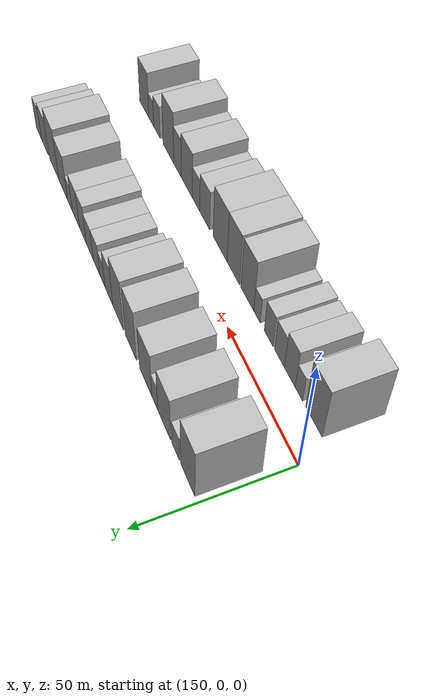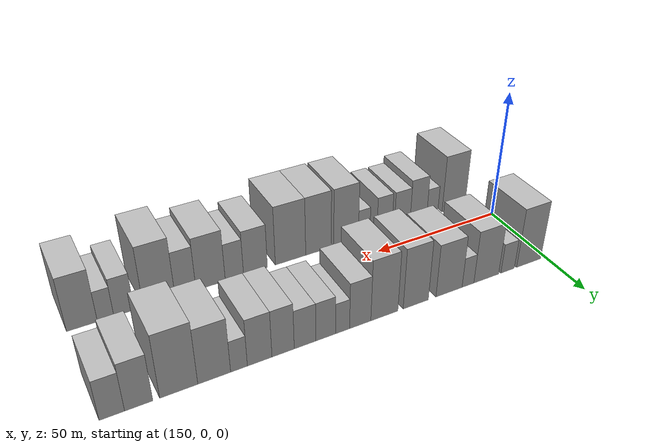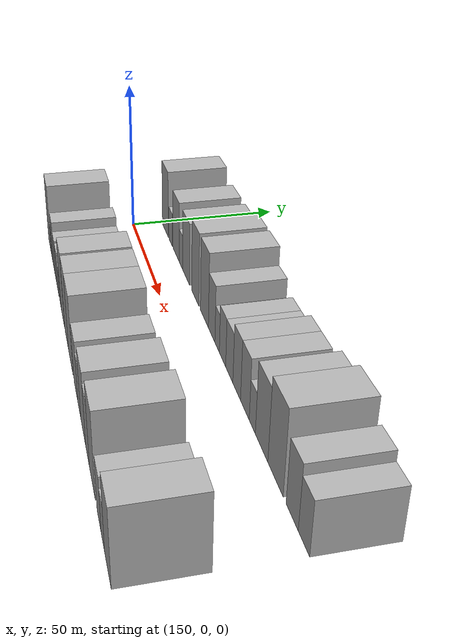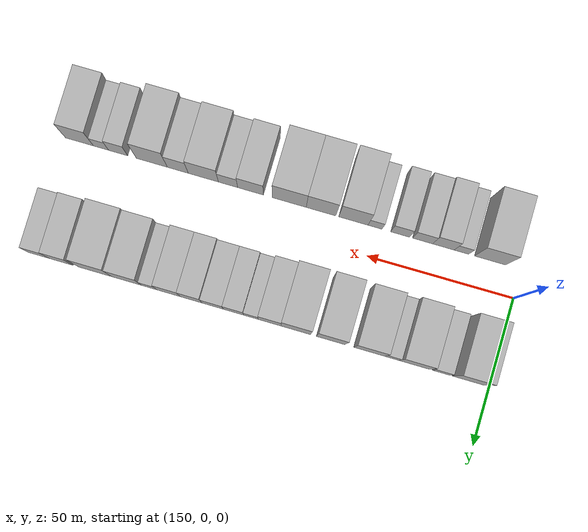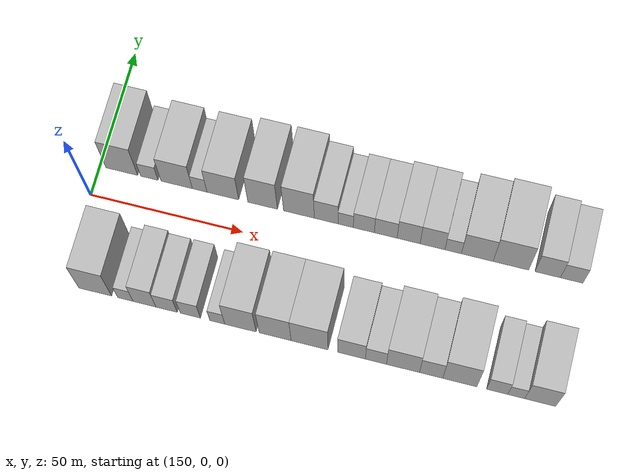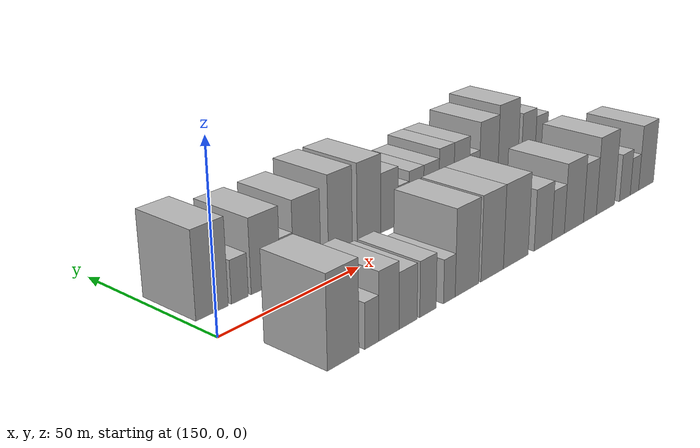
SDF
<sdf version="1.6">
 <world name="default">
  <model name="building_17">
   <static>1</static>
   <pose>157.3124 20.0000 0 0.000000 0.000000 1.570796</pose>
   <link name="link">
    <pose>0 0 12.00 0 0 0</pose>
    <collision name="collision"><geometry><box><size>20.0000 10.5557 24.0000</size></box></geometry></collision>
    <visual name="visual">
     <cast_shadows>0</cast_shadows>
     <geometry><box><size>20.0000 10.5557 24.0000</size></box></geometry>
     <material>
      <script>
       <uri>model://HANNAS_wall/materials/scripts</uri>
       <uri>model://HANNAS_wall/materials/textures</uri>
       <name>vrc/HANNAS_wall</name>
      </script>
     </material>
    </visual>
   </link>
  </model>
  <model name="building_18">
   <static>1</static>
   <pose>166.4663 20.0000 0 0.000000 0.000000 1.570796</pose>
   <link name="link">
    <pose>0 0 6.00 0 0 0</pose>
    <collision name="collision"><geometry><box><size>20.0000 5.7520 12.0000</size></box></geometry></collision>
    <visual name="visual">
     <cast_shadows>0</cast_shadows>
     <geometry><box><size>20.0000 5.7520 12.0000</size></box></geometry>
     <material>
      <script>
       <uri>model://HANNAS_wall/materials/scripts</uri>
       <uri>model://HANNAS_wall/materials/textures</uri>
       <name>vrc/HANNAS_wall</name>
      </script>
     </material>
    </visual>
   </link>
  </model>
  <model name="building_19">
   <static>1</static>
   <pose>175.5122 20.0000 0 0.000000 0.000000 1.570796</pose>
   <link name="link">
    <pose>0 0 10.50 0 0 0</pose>
    <collision name="collision"><geometry><box><size>20.0000 10.3398 21.0000</size></box></geometry></collision>
    <visual name="visual">
     <cast_shadows>0</cast_shadows>
     <geometry><box><size>20.0000 10.3398 21.0000</size></box></geometry>
     <material>
      <script>
       <uri>model://HANNAS_wall/materials/scripts</uri>
       <uri>model://HANNAS_wall/materials/textures</uri>
       <name>vrc/HANNAS_wall</name>
      </script>
     </material>
    </visual>
   </link>
  </model>
  <model name="building_20">
   <static>1</static>
   <pose>183.0930 20.0000 0 0.000000 0.000000 1.570796</pose>
   <link name="link">
    <pose>0 0 6.00 0 0 0</pose>
    <collision name="collision"><geometry><box><size>20.0000 4.8217 12.0000</size></box></geometry></collision>
    <visual name="visual">
     <cast_shadows>0</cast_shadows>
     <geometry><box><size>20.0000 4.8217 12.0000</size></box></geometry>
     <material>
      <script>
       <uri>model://HANNAS_wall/materials/scripts</uri>
       <uri>model://HANNAS_wall/materials/textures</uri>
       <name>vrc/HANNAS_wall</name>
      </script>
     </material>
    </visual>
   </link>
  </model>
  <model name="building_21">
   <static>1</static>
   <pose>190.7196 20.0000 0 0.000000 0.000000 1.570796</pose>
   <link name="link">
    <pose>0 0 10.50 0 0 0</pose>
    <collision name="collision"><geometry><box><size>20.0000 10.4315 21.0000</size></box></geometry></collision>
    <visual name="visual">
     <cast_shadows>0</cast_shadows>
     <geometry><box><size>20.0000 10.4315 21.0000</size></box></geometry>
     <material>
      <script>
       <uri>model://HANNAS_wall/materials/scripts</uri>
       <uri>model://HANNAS_wall/materials/textures</uri>
       <name>vrc/HANNAS_wall</name>
      </script>
     </material>
    </visual>
   </link>
  </model>
  <model name="building_22">
   <static>1</static>
   <pose>203.7811 20.0000 0 0.000000 0.000000 1.570796</pose>
   <link name="link">
    <pose>0 0 12.00 0 0 0</pose>
    <collision name="collision"><geometry><box><size>20.0000 9.6916 24.0000</size></box></geometry></collision>
    <visual name="visual">
     <cast_shadows>0</cast_shadows>
     <geometry><box><size>20.0000 9.6916 24.0000</size></box></geometry>
     <material>
      <script>
       <uri>model://HANNAS_wall/materials/scripts</uri>
       <uri>model://HANNAS_wall/materials/textures</uri>
       <name>vrc/HANNAS_wall</name>
      </script>
     </material>
    </visual>
   </link>
  </model>
  <model name="building_23">
   <static>1</static>
   <pose>215.6560 20.0000 0 0.000000 0.000000 1.570796</pose>
   <link name="link">
    <pose>0 0 12.00 0 0 0</pose>
    <collision name="collision"><geometry><box><size>20.0000 10.0581 24.0000</size></box></geometry></collision>
    <visual name="visual">
     <cast_shadows>0</cast_shadows>
     <geometry><box><size>20.0000 10.0581 24.0000</size></box></geometry>
     <material>
      <script>
       <uri>model://HANNAS_wall/materials/scripts</uri>
       <uri>model://HANNAS_wall/materials/textures</uri>
       <name>vrc/HANNAS_wall</name>
      </script>
     </material>
    </visual>
   </link>
  </model>
  <model name="building_24">
   <static>1</static>
   <pose>224.5340 20.0000 0 0.000000 0.000000 1.570796</pose>
   <link name="link">
    <pose>0 0 9.00 0 0 0</pose>
    <collision name="collision"><geometry><box><size>20.0000 7.6978 18.0000</size></box></geometry></collision>
    <visual name="visual">
     <cast_shadows>0</cast_shadows>
     <geometry><box><size>20.0000 7.6978 18.0000</size></box></geometry>
     <material>
      <script>
       <uri>model://HANNAS_wall/materials/scripts</uri>
       <uri>model://HANNAS_wall/materials/textures</uri>
       <name>vrc/HANNAS_wall</name>
      </script>
     </material>
    </visual>
   </link>
  </model>
  <model name="building_25">
   <static>1</static>
   <pose>230.8734 20.0000 0 0.000000 0.000000 1.570796</pose>
   <link name="link">
    <pose>0 0 6.00 0 0 0</pose>
    <collision name="collision"><geometry><box><size>20.0000 4.9810 12.0000</size></box></geometry></collision>
    <visual name="visual">
     <cast_shadows>0</cast_shadows>
     <geometry><box><size>20.0000 4.9810 12.0000</size></box></geometry>
     <material>
      <script>
       <uri>model://HANNAS_wall/materials/scripts</uri>
       <uri>model://HANNAS_wall/materials/textures</uri>
       <name>vrc/HANNAS_wall</name>
      </script>
     </material>
    </visual>
   </link>
  </model>
  <model name="building_26">
   <static>1</static>
   <pose>236.7851 20.0000 0 0.000000 0.000000 1.570796</pose>
   <link name="link">
    <pose>0 0 7.50 0 0 0</pose>
    <collision name="collision"><geometry><box><size>20.0000 6.8425 15.0000</size></box></geometry></collision>
    <visual name="visual">
     <cast_shadows>0</cast_shadows>
     <geometry><box><size>20.0000 6.8425 15.0000</size></box></geometry>
     <material>
      <script>
       <uri>model://HANNAS_wall/materials/scripts</uri>
       <uri>model://HANNAS_wall/materials/textures</uri>
       <name>vrc/HANNAS_wall</name>
      </script>
     </material>
    </visual>
   </link>
  </model>
  <model name="building_27">
   <static>1</static>
   <pose>243.8890 20.0000 0 0.000000 0.000000 1.570796</pose>
   <link name="link">
    <pose>0 0 7.50 0 0 0</pose>
    <collision name="collision"><geometry><box><size>20.0000 7.3652 15.0000</size></box></geometry></collision>
    <visual name="visual">
     <cast_shadows>0</cast_shadows>
     <geometry><box><size>20.0000 7.3652 15.0000</size></box></geometry>
     <material>
      <script>
       <uri>model://HANNAS_wall/materials/scripts</uri>
       <uri>model://HANNAS_wall/materials/textures</uri>
       <name>vrc/HANNAS_wall</name>
      </script>
     </material>
    </visual>
   </link>
  </model>
  <model name="building_28">
   <static>1</static>
   <pose>251.2797 20.0000 0 0.000000 0.000000 1.570796</pose>
   <link name="link">
    <pose>0 0 9.00 0 0 0</pose>
    <collision name="collision"><geometry><box><size>20.0000 7.4162 18.0000</size></box></geometry></collision>
    <visual name="visual">
     <cast_shadows>0</cast_shadows>
     <geometry><box><size>20.0000 7.4162 18.0000</size></box></geometry>
     <material>
      <script>
       <uri>model://HANNAS_wall/materials/scripts</uri>
       <uri>model://HANNAS_wall/materials/textures</uri>
       <name>vrc/HANNAS_wall</name>
      </script>
     </material>
    </visual>
   </link>
  </model>
  <model name="building_29">
   <static>1</static>
   <pose>258.9793 20.0000 0 0.000000 0.000000 1.570796</pose>
   <link name="link">
    <pose>0 0 9.00 0 0 0</pose>
    <collision name="collision"><geometry><box><size>20.0000 7.9831 18.0000</size></box></geometry></collision>
    <visual name="visual">
     <cast_shadows>0</cast_shadows>
     <geometry><box><size>20.0000 7.9831 18.0000</size></box></geometry>
     <material>
      <script>
       <uri>model://HANNAS_wall/materials/scripts</uri>
       <uri>model://HANNAS_wall/materials/textures</uri>
       <name>vrc/HANNAS_wall</name>
      </script>
     </material>
    </visual>
   </link>
  </model>
  <model name="building_30">
   <static>1</static>
   <pose>265.6253 20.0000 0 0.000000 0.000000 1.570796</pose>
   <link name="link">
    <pose>0 0 6.00 0 0 0</pose>
    <collision name="collision"><geometry><box><size>20.0000 5.3088 12.0000</size></box></geometry></collision>
    <visual name="visual">
     <cast_shadows>0</cast_shadows>
     <geometry><box><size>20.0000 5.3088 12.0000</size></box></geometry>
     <material>
      <script>
       <uri>model://HANNAS_wall/materials/scripts</uri>
       <uri>model://HANNAS_wall/materials/textures</uri>
       <name>vrc/HANNAS_wall</name>
      </script>
     </material>
    </visual>
   </link>
  </model>
  <model name="building_31">
   <static>1</static>
   <pose>273.3707 20.0000 0 0.000000 0.000000 1.570796</pose>
   <link name="link">
    <pose>0 0 10.50 0 0 0</pose>
    <collision name="collision"><geometry><box><size>20.0000 10.1820 21.0000</size></box></geometry></collision>
    <visual name="visual">
     <cast_shadows>0</cast_shadows>
     <geometry><box><size>20.0000 10.1820 21.0000</size></box></geometry>
     <material>
      <script>
       <uri>model://HANNAS_wall/materials/scripts</uri>
       <uri>model://HANNAS_wall/materials/textures</uri>
       <name>vrc/HANNAS_wall</name>
      </script>
     </material>
    </visual>
   </link>
  </model>
  <model name="building_32">
   <static>1</static>
   <pose>284.1615 20.0000 0 0.000000 0.000000 1.570796</pose>
   <link name="link">
    <pose>0 0 12.00 0 0 0</pose>
    <collision name="collision"><geometry><box><size>20.0000 11.3996 24.0000</size></box></geometry></collision>
    <visual name="visual">
     <cast_shadows>0</cast_shadows>
     <geometry><box><size>20.0000 11.3996 24.0000</size></box></geometry>
     <material>
      <script>
       <uri>model://HANNAS_wall/materials/scripts</uri>
       <uri>model://HANNAS_wall/materials/textures</uri>
       <name>vrc/HANNAS_wall</name>
      </script>
     </material>
    </visual>
   </link>
  </model>
  <model name="building_33">
   <static>1</static>
   <pose>295.9186 20.0000 0 0.000000 0.000000 1.570796</pose>
   <link name="link">
    <pose>0 0 9.00 0 0 0</pose>
    <collision name="collision"><geometry><box><size>20.0000 8.1147 18.0000</size></box></geometry></collision>
    <visual name="visual">
     <cast_shadows>0</cast_shadows>
     <geometry><box><size>20.0000 8.1147 18.0000</size></box></geometry>
     <material>
      <script>
       <uri>model://HANNAS_wall/materials/scripts</uri>
       <uri>model://HANNAS_wall/materials/textures</uri>
       <name>vrc/HANNAS_wall</name>
      </script>
     </material>
    </visual>
   </link>
  </model>
  <model name="building_34">
   <static>1</static>
   <pose>303.5557 20.0000 0 0.000000 0.000000 1.570796</pose>
   <link name="link">
    <pose>0 0 7.50 0 0 0</pose>
    <collision name="collision"><geometry><box><size>20.0000 7.1594 15.0000</size></box></geometry></collision>
    <visual name="visual">
     <cast_shadows>0</cast_shadows>
     <geometry><box><size>20.0000 7.1594 15.0000</size></box></geometry>
     <material>
      <script>
       <uri>model://HANNAS_wall/materials/scripts</uri>
       <uri>model://HANNAS_wall/materials/textures</uri>
       <name>vrc/HANNAS_wall</name>
      </script>
     </material>
    </visual>
   </link>
  </model>
  <model name="building_51">
   <static>1</static>
   <pose>160.6385 -20.0000 0 0.000000 0.000000 1.570796</pose>
   <link name="link">
    <pose>0 0 12.00 0 0 0</pose>
    <collision name="collision"><geometry><box><size>20.0000 10.6221 24.0000</size></box></geometry></collision>
    <visual name="visual">
     <cast_shadows>0</cast_shadows>
     <geometry><box><size>20.0000 10.6221 24.0000</size></box></geometry>
     <material>
      <script>
       <uri>model://HANNAS_wall/materials/scripts</uri>
       <uri>model://HANNAS_wall/materials/textures</uri>
       <name>vrc/HANNAS_wall</name>
      </script>
     </material>
    </visual>
   </link>
  </model>
  <model name="building_52">
   <static>1</static>
   <pose>170.4308 -20.0000 0 0.000000 0.000000 1.570796</pose>
   <link name="link">
    <pose>0 0 6.00 0 0 0</pose>
    <collision name="collision"><geometry><box><size>20.0000 4.9626 12.0000</size></box></geometry></collision>
    <visual name="visual">
     <cast_shadows>0</cast_shadows>
     <geometry><box><size>20.0000 4.9626 12.0000</size></box></geometry>
     <material>
      <script>
       <uri>model://HANNAS_wall/materials/scripts</uri>
       <uri>model://HANNAS_wall/materials/textures</uri>
       <name>vrc/HANNAS_wall</name>
      </script>
     </material>
    </visual>
   </link>
  </model>
  <model name="building_53">
   <static>1</static>
   <pose>176.6036 -20.0000 0 0.000000 0.000000 1.570796</pose>
   <link name="link">
    <pose>0 0 9.00 0 0 0</pose>
    <collision name="collision"><geometry><box><size>20.0000 7.3831 18.0000</size></box></geometry></collision>
    <visual name="visual">
     <cast_shadows>0</cast_shadows>
     <geometry><box><size>20.0000 7.3831 18.0000</size></box></geometry>
     <material>
      <script>
       <uri>model://HANNAS_wall/materials/scripts</uri>
       <uri>model://HANNAS_wall/materials/textures</uri>
       <name>vrc/HANNAS_wall</name>
      </script>
     </material>
    </visual>
   </link>
  </model>
  <model name="building_54">
   <static>1</static>
   <pose>183.7278 -20.0000 0 0.000000 0.000000 1.570796</pose>
   <link name="link">
    <pose>0 0 7.50 0 0 0</pose>
    <collision name="collision"><geometry><box><size>20.0000 6.8653 15.0000</size></box></geometry></collision>
    <visual name="visual">
     <cast_shadows>0</cast_shadows>
     <geometry><box><size>20.0000 6.8653 15.0000</size></box></geometry>
     <material>
      <script>
       <uri>model://HANNAS_wall/materials/scripts</uri>
       <uri>model://HANNAS_wall/materials/textures</uri>
       <name>vrc/HANNAS_wall</name>
      </script>
     </material>
    </visual>
   </link>
  </model>
  <model name="building_55">
   <static>1</static>
   <pose>191.3890 -20.0000 0 0.000000 0.000000 1.570796</pose>
   <link name="link">
    <pose>0 0 7.50 0 0 0</pose>
    <collision name="collision"><geometry><box><size>20.0000 6.4571 15.0000</size></box></geometry></collision>
    <visual name="visual">
     <cast_shadows>0</cast_shadows>
     <geometry><box><size>20.0000 6.4571 15.0000</size></box></geometry>
     <material>
      <script>
       <uri>model://HANNAS_wall/materials/scripts</uri>
       <uri>model://HANNAS_wall/materials/textures</uri>
       <name>vrc/HANNAS_wall</name>
      </script>
     </material>
    </visual>
   </link>
  </model>
  <model name="building_56">
   <static>1</static>
   <pose>200.0226 -20.0000 0 0.000000 0.000000 1.570796</pose>
   <link name="link">
    <pose>0 0 6.00 0 0 0</pose>
    <collision name="collision"><geometry><box><size>20.0000 4.8101 12.0000</size></box></geometry></collision>
    <visual name="visual">
     <cast_shadows>0</cast_shadows>
     <geometry><box><size>20.0000 4.8101 12.0000</size></box></geometry>
     <material>
      <script>
       <uri>model://HANNAS_wall/materials/scripts</uri>
       <uri>model://HANNAS_wall/materials/textures</uri>
       <name>vrc/HANNAS_wall</name>
      </script>
     </material>
    </visual>
   </link>
  </model>
  <model name="building_57">
   <static>1</static>
   <pose>207.4470 -20.0000 0 0.000000 0.000000 1.570796</pose>
   <link name="link">
    <pose>0 0 12.00 0 0 0</pose>
    <collision name="collision"><geometry><box><size>20.0000 10.0388 24.0000</size></box></geometry></collision>
    <visual name="visual">
     <cast_shadows>0</cast_shadows>
     <geometry><box><size>20.0000 10.0388 24.0000</size></box></geometry>
     <material>
      <script>
       <uri>model://HANNAS_wall/materials/scripts</uri>
       <uri>model://HANNAS_wall/materials/textures</uri>
       <name>vrc/HANNAS_wall</name>
      </script>
     </material>
    </visual>
   </link>
  </model>
  <model name="building_58">
   <static>1</static>
   <pose>218.5484 -20.0000 0 0.000000 0.000000 1.570796</pose>
   <link name="link">
    <pose>0 0 12.00 0 0 0</pose>
    <collision name="collision"><geometry><box><size>20.0000 10.1640 24.0000</size></box></geometry></collision>
    <visual name="visual">
     <cast_shadows>0</cast_shadows>
     <geometry><box><size>20.0000 10.1640 24.0000</size></box></geometry>
     <material>
      <script>
       <uri>model://HANNAS_wall/materials/scripts</uri>
       <uri>model://HANNAS_wall/materials/textures</uri>
       <name>vrc/HANNAS_wall</name>
      </script>
     </material>
    </visual>
   </link>
  </model>
  <model name="building_59">
   <static>1</static>
   <pose>229.4949 -20.0000 0 0.000000 0.000000 1.570796</pose>
   <link name="link">
    <pose>0 0 12.00 0 0 0</pose>
    <collision name="collision"><geometry><box><size>20.0000 11.7292 24.0000</size></box></geometry></collision>
    <visual name="visual">
     <cast_shadows>0</cast_shadows>
     <geometry><box><size>20.0000 11.7292 24.0000</size></box></geometry>
     <material>
      <script>
       <uri>model://HANNAS_wall/materials/scripts</uri>
       <uri>model://HANNAS_wall/materials/textures</uri>
       <name>vrc/HANNAS_wall</name>
      </script>
     </material>
    </visual>
   </link>
  </model>
  <model name="building_60">
   <static>1</static>
   <pose>242.7933 -20.0000 0 0.000000 0.000000 1.570796</pose>
   <link name="link">
    <pose>0 0 9.00 0 0 0</pose>
    <collision name="collision"><geometry><box><size>20.0000 8.8675 18.0000</size></box></geometry></collision>
    <visual name="visual">
     <cast_shadows>0</cast_shadows>
     <geometry><box><size>20.0000 8.8675 18.0000</size></box></geometry>
     <material>
      <script>
       <uri>model://HANNAS_wall/materials/scripts</uri>
       <uri>model://HANNAS_wall/materials/textures</uri>
       <name>vrc/HANNAS_wall</name>
      </script>
     </material>
    </visual>
   </link>
  </model>
  <model name="building_61">
   <static>1</static>
   <pose>250.5465 -20.0000 0 0.000000 0.000000 1.570796</pose>
   <link name="link">
    <pose>0 0 7.50 0 0 0</pose>
    <collision name="collision"><geometry><box><size>20.0000 6.6389 15.0000</size></box></geometry></collision>
    <visual name="visual">
     <cast_shadows>0</cast_shadows>
     <geometry><box><size>20.0000 6.6389 15.0000</size></box></geometry>
     <material>
      <script>
       <uri>model://HANNAS_wall/materials/scripts</uri>
       <uri>model://HANNAS_wall/materials/textures</uri>
       <name>vrc/HANNAS_wall</name>
      </script>
     </material>
    </visual>
   </link>
  </model>
  <model name="building_62">
   <static>1</static>
   <pose>259.0636 -20.0000 0 0.000000 0.000000 1.570796</pose>
   <link name="link">
    <pose>0 0 10.50 0 0 0</pose>
    <collision name="collision"><geometry><box><size>20.0000 10.3953 21.0000</size></box></geometry></collision>
    <visual name="visual">
     <cast_shadows>0</cast_shadows>
     <geometry><box><size>20.0000 10.3953 21.0000</size></box></geometry>
     <material>
      <script>
       <uri>model://HANNAS_wall/materials/scripts</uri>
       <uri>model://HANNAS_wall/materials/textures</uri>
       <name>vrc/HANNAS_wall</name>
      </script>
     </material>
    </visual>
   </link>
  </model>
  <model name="building_63">
   <static>1</static>
   <pose>267.8921 -20.0000 0 0.000000 0.000000 1.570796</pose>
   <link name="link">
    <pose>0 0 9.00 0 0 0</pose>
    <collision name="collision"><geometry><box><size>20.0000 7.2618 18.0000</size></box></geometry></collision>
    <visual name="visual">
     <cast_shadows>0</cast_shadows>
     <geometry><box><size>20.0000 7.2618 18.0000</size></box></geometry>
     <material>
      <script>
       <uri>model://HANNAS_wall/materials/scripts</uri>
       <uri>model://HANNAS_wall/materials/textures</uri>
       <name>vrc/HANNAS_wall</name>
      </script>
     </material>
    </visual>
   </link>
  </model>
  <model name="building_64">
   <static>1</static>
   <pose>276.8897 -20.0000 0 0.000000 0.000000 1.570796</pose>
   <link name="link">
    <pose>0 0 12.00 0 0 0</pose>
    <collision name="collision"><geometry><box><size>20.0000 10.7334 24.0000</size></box></geometry></collision>
    <visual name="visual">
     <cast_shadows>0</cast_shadows>
     <geometry><box><size>20.0000 10.7334 24.0000</size></box></geometry>
     <material>
      <script>
       <uri>model://HANNAS_wall/materials/scripts</uri>
       <uri>model://HANNAS_wall/materials/textures</uri>
       <name>vrc/HANNAS_wall</name>
      </script>
     </material>
    </visual>
   </link>
  </model>
  <model name="building_65">
   <static>1</static>
   <pose>288.5619 -20.0000 0 0.000000 0.000000 1.570796</pose>
   <link name="link">
    <pose>0 0 7.50 0 0 0</pose>
    <collision name="collision"><geometry><box><size>20.0000 6.6109 15.0000</size></box></geometry></collision>
    <visual name="visual">
     <cast_shadows>0</cast_shadows>
     <geometry><box><size>20.0000 6.6109 15.0000</size></box></geometry>
     <material>
      <script>
       <uri>model://HANNAS_wall/materials/scripts</uri>
       <uri>model://HANNAS_wall/materials/textures</uri>
       <name>vrc/HANNAS_wall</name>
      </script>
     </material>
    </visual>
   </link>
  </model>
  <model name="building_66">
   <static>1</static>
   <pose>294.5026 -20.0000 0 0.000000 0.000000 1.570796</pose>
   <link name="link">
    <pose>0 0 6.00 0 0 0</pose>
    <collision name="collision"><geometry><box><size>20.0000 5.2706 12.0000</size></box></geometry></collision>
    <visual name="visual">
     <cast_shadows>0</cast_shadows>
     <geometry><box><size>20.0000 5.2706 12.0000</size></box></geometry>
     <material>
      <script>
       <uri>model://HANNAS_wall/materials/scripts</uri>
       <uri>model://HANNAS_wall/materials/textures</uri>
       <name>vrc/HANNAS_wall</name>
      </script>
     </material>
    </visual>
   </link>
  </model>
  <model name="building_67">
   <static>1</static>
   <pose>301.9873 -20.0000 0 0.000000 0.000000 1.570796</pose>
   <link name="link">
    <pose>0 0 10.50 0 0 0</pose>
    <collision name="collision"><geometry><box><size>20.0000 9.6988 21.0000</size></box></geometry></collision>
    <visual name="visual">
     <cast_shadows>0</cast_shadows>
     <geometry><box><size>20.0000 9.6988 21.0000</size></box></geometry>
     <material>
      <script>
       <uri>model://HANNAS_wall/materials/scripts</uri>
       <uri>model://HANNAS_wall/materials/textures</uri>
       <name>vrc/HANNAS_wall</name>
      </script>
     </material>
    </visual>
   </link>
  </model>
 </world>
</sdf>
